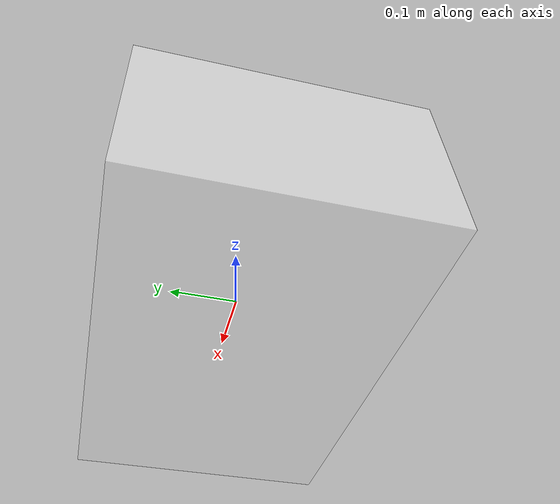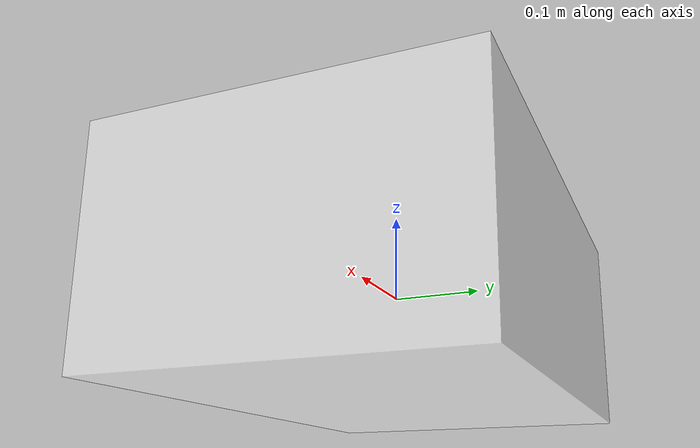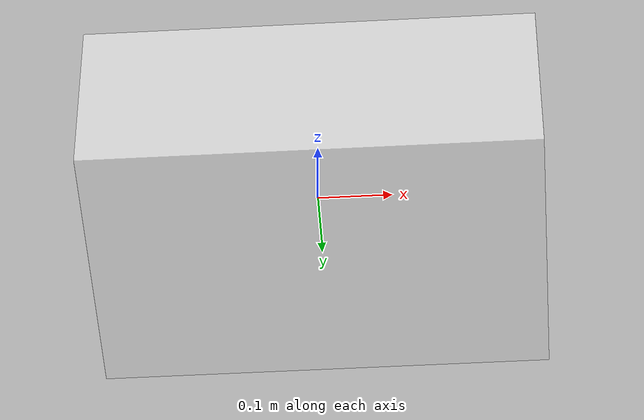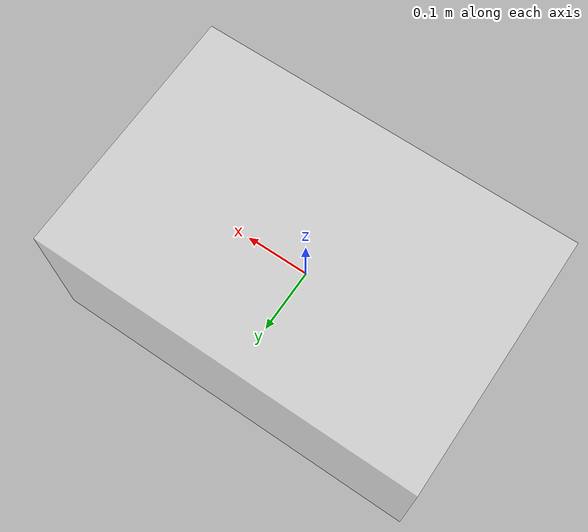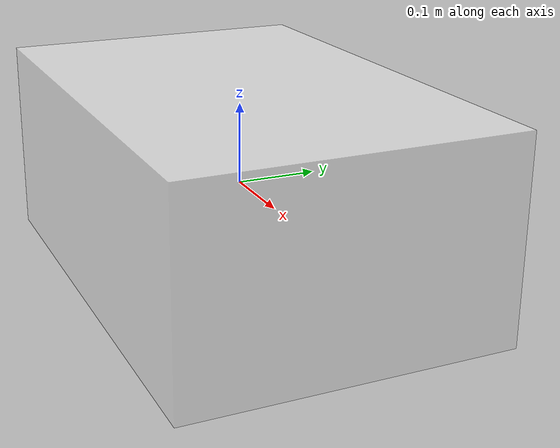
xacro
<?xml version="1.0"?>
<robot xmlns:xacro="http://wwww.ros.org/wiki/xacro" name="robot">
    <xacro:macro name="base_link" >
    <!--机器人的身体部分-->
    <link name="base_link">
        <!--部件的外观描述-->
        <visual>
            <!--沿着自己几何中心的偏移和旋转量-->
            <origin xyz="0.0 0.0 0.0" rpy="0.0 0.0 0.0"/>
            <!--几何形状-->
            <geometry>
                <!-- 定义一个长方体：长(x) 宽(y) 高(z)，单位：米 -->
                <box size="0.6 0.4 0.25"/>
            </geometry>
            <!--材质颜色-->
            <material name="white">
                <color rgba="1.0 1.0 1.0 0.5"/>
            </material>
        </visual>
    </link>
    </xacro:macro>

    <xacro:macro name="imu_link" params="imu_name xyz">
    <!--机器人的IMU部件，惯性测量传感器-->
    <link name="${imu_name}_link">
        <!--部件的外观描述-->
        <visual>
            <!--沿着自己几何中心的偏移和旋转量-->
            <origin xyz="0.0 0.0 0.0" rpy="0.0 0.0 0.0"/>
            <!--几何形状-->
            <geometry>
                <!-- 定义一个正方体：长(x) 宽(y) 高(z)，单位：米 -->
                <box size="0.02 0.02 0.02"/>
            </geometry>
            <!--材质颜色-->
            <material name="black">
                <color rgba="0.0 0.0 0.0 0.5"/>
            </material>
        </visual>
    </link>

    <!--机器人的关节，用于组合机器人的部件-->
    <joint name="${imu_name}_joint" type="fixed">
        <origin xyz="${xyz}" rpy="0.0 0.0 0.0"/>
        <parent link="base_link"/>
        <child link="${imu_name}_link"/>
    </joint>
    </xacro:macro>

    <xacro:base_link/>
    <xacro:imu_link imu_name="imu_up" xyz="0.0 0.0 0.03"/>
    <xacro:imu_link imu_name="imu_down" xyz="0.0 0.0 -0.03"/>

</robot>
